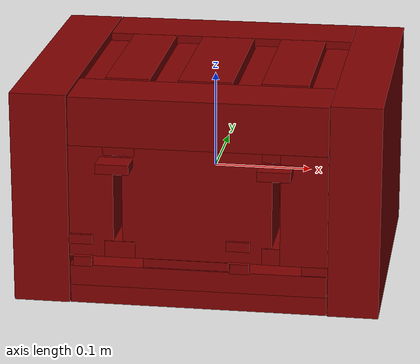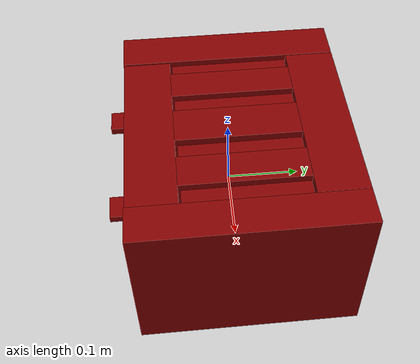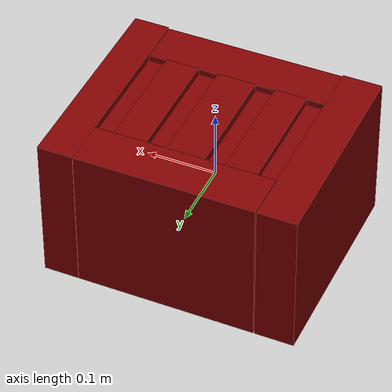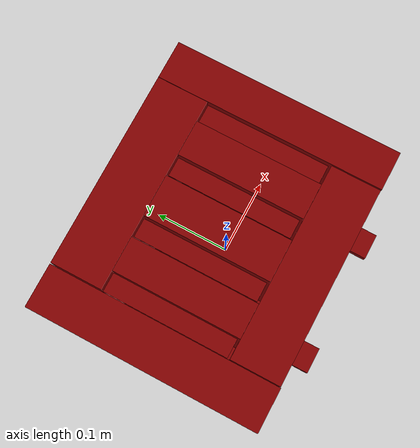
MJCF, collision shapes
<?xml version='1.0' encoding='UTF-8'?>
<mujoco model="model">
  <compiler angle="radian"/>
  <asset>
    <mesh file="visuals/Body001.obj" name="Body001_vis"/>
    <mesh file="visuals/Button001.obj" name="Button001_vis"/>
    <mesh file="visuals/Button002.obj" name="Button002_vis"/>
    <mesh file="visuals/Button003.obj" name="Button003_vis"/>
    <mesh file="visuals/Button004.obj" name="Button004_vis"/>
    <mesh file="visuals/Lever001.obj" name="Lever001_vis"/>
    <mesh file="visuals/Lever002.obj" name="Lever002_vis"/>
    <texture file="visuals/T_BC001.png" name="Body001_material" type="2d"/>
    <material name="Body001_material" rgba="1 1 1 1.0" texture="Body001_material" shininess="1" specular="1"/>
    <texture file="visuals/T_BC001.png" name="Button001_material" type="2d"/>
    <material name="Button001_material" rgba="1 1 1 1.0" texture="Button001_material" shininess="1" specular="1"/>
    <texture file="visuals/T_BC001.png" name="Button002_material" type="2d"/>
    <material name="Button002_material" rgba="1 1 1 1.0" texture="Button002_material" shininess="1" specular="1"/>
    <texture file="visuals/T_BC001.png" name="Button003_material" type="2d"/>
    <material name="Button003_material" rgba="1 1 1 1.0" texture="Button003_material" shininess="1" specular="1"/>
    <texture file="visuals/T_BC001.png" name="Button004_material" type="2d"/>
    <material name="Button004_material" rgba="1 1 1 1.0" texture="Button004_material" shininess="1" specular="1"/>
    <texture file="visuals/T_BC001.png" name="Lever001_material" type="2d"/>
    <material name="Lever001_material" rgba="1 1 1 1.0" texture="Lever001_material" shininess="1" specular="1"/>
    <texture file="visuals/T_BC001.png" name="Lever002_material" type="2d"/>
    <material name="Lever002_material" rgba="1 1 1 1.0" texture="Lever002_material" shininess="1" specular="1"/>
  </asset>
  <default>
    <default class="visual">
      <geom conaffinity="0" contype="0" group="1" type="mesh"/>
    </default>
    <default class="collision">
      <geom group="0" rgba="0.5 0 0 0.5"/>
    </default>
    <default class="spawn">
      <geom group="0" rgba="1 1 1 0.5" contype="0" conaffinity="0"/>
      <site group="0" rgba="1 1 1 0.5"/>
    </default>
    <default class="region">
      <geom group="1" conaffinity="0" contype="0" rgba="0 1 0 0"/>
    </default>
  </default>
  <worldbody>
    <body>
      <body name="object">
        <geom mesh="Body001_vis" type="mesh" solimp="0.998 0.998 0.001" solref="0.001 1" density="100" friction="0.95 0.3 0.1" class="visual" material="Body001_material"/>
        <geom class="collision" type="box" pos="-0.15742726624011993 0.012915825471282005 0.002451108768582344" size="0.028422826901078224 0.15073636174201965 0.10915911197662354" quat="1.0 0.0 0.0 0.0"/>
        <geom class="collision" type="box" pos="0.15744970738887787 0.012915825471282005 0.002451108768582344" size="0.025575680658221245 0.15073636174201965 0.10915911197662354" quat="1.0 0.0 0.0 0.0"/>
        <geom class="collision" type="box" pos="0.0019800602458417416 0.12985439598560333 0.002451108768582344" size="0.12950655817985535 0.03379778936505318 0.10915911197662354" quat="1.0 0.0 0.0 0.0"/>
        <geom class="collision" type="box" pos="-0.0792175829410553 0.011945940554141998 0.011153440922498703" size="0.022919220849871635 0.0839310958981514 0.10045678168535233" quat="1.0 0.0 0.0 0.0"/>
        <geom class="collision" type="box" pos="2.308376133441925e-05 0.011945940554141998 0.011153440922498703" size="0.02770495042204857 0.0839310958981514 0.10045678168535233" quat="1.0 0.0 0.0 0.0"/>
        <geom class="collision" type="box" pos="0.08044862747192383 0.011945940554141998 0.011153440922498703" size="0.02377796173095703 0.0839310958981514 0.10045678168535233" quat="1.0 0.0 0.0 0.0"/>
        <geom class="collision" type="box" pos="0.0014029631856828928 -0.02025175467133522 -0.09706620126962662" size="0.12940776348114014 0.11612878739833832 0.009750613942742348" quat="1.0 0.0 0.0 0.0"/>
        <geom class="collision" type="box" pos="0.0014029631856828928 -0.10463718324899673 -0.07667811959981918" size="0.12940776348114014 0.03244194760918617 0.010927493683993816" quat="1.0 0.0 0.0 0.0"/>
        <geom class="collision" type="box" pos="0.0015447498299181461 -0.10459443926811218 0.08488725125789642" size="0.1295495480298996 0.03248468041419983 0.025019899010658264" quat="1.0 0.0 0.0 0.0"/>
        <geom class="collision" type="box" pos="0.000752061780076474 -0.10406503081321716 0.0019107051193714142" size="0.07500772178173065 0.03195526450872421 0.05791382119059563" quat="1.0 0.0 0.0 0.0"/>
        <geom class="collision" type="box" pos="0.107742078602314 -0.10459443926811218 0.0019107051193714142" size="0.023630762472748756 0.03248468041419983 0.05791382119059563" quat="1.0 0.0 0.0 0.0"/>
        <geom class="collision" type="box" pos="-0.10584954917430878 -0.10382004082202911 0.0019107051193714142" size="0.022509802132844925 0.03216703236103058 0.05791382119059563" quat="1.0 0.0 0.0 0.0"/>
        <geom class="collision" type="box" pos="-0.010623300448060036 -0.10435780137777328 -0.06052663177251816" size="0.04294619336724281 0.03224804624915123 0.004553386475890875" quat="1.0 0.0 0.0 0.0"/>
        <geom class="collision" type="box" pos="0.11870092898607254 -0.10459443926811218 -0.06052663177251816" size="0.013107260689139366 0.03248468041419983 0.004553386475890875" quat="1.0 0.0 0.0 0.0"/>
        <geom class="collision" type="box" pos="-0.07698499411344528 -0.10413768887519836 -0.04741930216550827" size="0.015368800610303879 0.03248468041419983 0.008583811111748219" quat="1.0 0.0 0.0 0.0"/>
        <geom class="collision" type="box" pos="0.08126544207334518 -0.10413768887519836 -0.04741930216550827" size="0.015312239527702332 0.03248468041419983 0.008583811111748219" quat="1.0 0.0 0.0 0.0"/>
        <geom class="collision" type="box" pos="0.08111836761236191 -0.10413768887519836 0.05556058883666992" size="0.015459313988685608 0.03248468041419983 0.004495400004088879" quat="1.0 0.0 0.0 0.0"/>
        <geom class="collision" type="box" pos="-0.07711538672447205 -0.10413768887519836 0.05556058883666992" size="0.015897255390882492 0.03248468041419983 0.004495400004088879" quat="1.0 0.0 0.0 0.0"/>
        <geom class="collision" type="cylinder" pos="-0.16226035356521606 -0.09640666097402573 -0.10892433673143387" size="0.004896887578070164 0.002551341662183404" quat="1.0 0.0 0.0 0.0"/>
        <geom class="collision" type="cylinder" pos="0.16216564178466797 -0.09640666097402573 -0.10892433673143387" size="0.004896887578070164 0.002551341662183404" quat="1.0 0.0 0.0 0.0"/>
        <geom class="collision" type="cylinder" pos="0.16216564178466797 0.1349889636039734 -0.10892433673143387" size="0.004896887578070164 0.002551341662183404" quat="1.0 0.0 0.0 0.0"/>
        <geom class="collision" type="cylinder" pos="-0.16226035356521606 0.1349889636039734 -0.10892433673143387" size="0.004896887578070164 0.002551341662183404" quat="1.0 0.0 0.0 0.0"/>
        <body name="Button001">
          <joint axis="0.0 1.0 0.0" pos="-0.11641499400138855 -0.13784638047218323 -0.03743427246809006" limited="true" name="Button001_joint" range="0.0 0.001" type="slide" damping="1" frictionloss="1" armature=".01" stiffness="0.05"/>
          <geom mesh="Button001_vis" type="mesh" solimp="0.998 0.998 0.001" solref="0.001 1" density="100" friction="0.95 0.3 0.1" class="visual" material="Button001_material"/>
          <geom class="collision" type="box" pos="-0.11637920141220093 -0.13805429637432098 -0.03751402348279953" size="0.012049396522343159 0.0014285552315413952 0.004999059252440929" quat="1.0 0.0 0.0 0.0"/>
        </body>
        <body name="Button002">
          <joint axis="0.0 1.0 0.0" pos="0.04230264574289322 -0.13784638047218323 -0.03743429481983185" limited="true" name="Button002_joint" range="0.0 0.001" type="slide" damping="1" frictionloss="1" armature=".01" stiffness="0.05"/>
          <geom mesh="Button002_vis" type="mesh" solimp="0.998 0.998 0.001" solref="0.001 1" density="100" friction="0.95 0.3 0.1" class="visual" material="Button002_material"/>
          <geom class="collision" type="box" pos="0.04235977679491043 -0.13805429637432098 -0.03751402348279953" size="0.012049396522343159 0.0014285552315413952 0.004999059252440929" quat="1.0 0.0 0.0 0.0"/>
        </body>
        <body name="Button003">
          <joint axis="1.0 0.0 0.0" pos="-0.11414897441864014 -0.12978218495845795 -0.05992436408996582" limited="true" name="Button003_joint" range="0.0 0.052000000000000005" type="slide" damping="1" frictionloss="1" armature=".01" stiffness="0.05"/>
          <geom mesh="Button003_vis" type="mesh" solimp="0.998 0.998 0.001" solref="0.001 1" density="100" friction="0.95 0.3 0.1" class="visual" material="Button003_material"/>
          <geom class="collision" type="box" pos="-0.11415667831897736 -0.13981583714485168 -0.05994628369808197" size="0.009560592472553253 0.002833350794389844 0.005086520686745644" quat="1.0 0.0 0.0 0.0"/>
          <geom class="collision" type="cylinder" pos="-0.11352100968360901 -0.12739166617393494 -0.0600186251103878" size="0.0018894533859565854 0.009607632644474506" quat="0.7071067094802856 0.7071068286895752 0.0 0.0"/>
        </body>
        <body name="Button004">
          <joint axis="1.0 0.0 0.0" pos="0.044298525899648666 -0.12978234887123108 -0.05992436408996582" limited="true" name="Button004_joint" range="0.0 0.053" type="slide" damping="1" frictionloss="1" armature=".01" stiffness="0.05"/>
          <geom mesh="Button004_vis" type="mesh" solimp="0.998 0.998 0.001" solref="0.001 1" density="100" friction="0.95 0.3 0.1" class="visual" material="Button004_material"/>
          <geom class="collision" type="box" pos="0.044316455721855164 -0.13981583714485168 -0.05994628369808197" size="0.009560592472553253 0.002833350794389844 0.005086520686745644" quat="1.0 0.0 0.0 0.0"/>
          <geom class="collision" type="cylinder" pos="0.044370438903570175 -0.12739166617393494 -0.0600186251103878" size="0.0018894533859565854 0.009607632644474506" quat="0.7071067094802856 0.7071068286895752 0.0 0.0"/>
        </body>
        <body name="Lever001">
          <joint axis="0.0 0.0 -1.0" pos="-0.07934772968292236 -0.13922840356826782 0.04506422579288483" limited="true" name="Lever001_joint" range="0.0 0.075" type="slide" damping="1" frictionloss="1" armature=".01" stiffness="1" springref="-1"/>
          <geom mesh="Lever001_vis" type="mesh" solimp="0.998 0.998 0.001" solref="0.001 1" density="100" friction="0.95 0.3 0.1" class="visual" material="Lever001_material"/>
          <geom class="collision" type="box" pos="-0.07930850237607956 -0.15010011196136475 0.04507774859666824" size="0.016504444181919098 0.012149329297244549 0.004880914930254221" quat="1.0 0.0 0.0 0.0" name="sideL_lever_knob"/>
          <geom class="collision" type="cylinder" pos="-0.07924050837755203 -0.12753355503082275 0.045028846710920334" size="0.002466813661158085 0.01055104285478592" quat="0.7071067094802856 0.7071068286895752 0.0 0.0"/>
          <geom class="collision" type="box" pos="-0.11549612134695053 0.012951436452567577 0.1021818295121193" size="0.01249999925494194 0.08173847943544388 0.001539887161925435" quat="1.0 0.0 0.0 0.0" name="sideL_slotL_floor"/>
          <geom class="collision" type="box" pos="-0.041988011449575424 0.012951436452567577 0.1021818295121193" size="0.01249999925494194 0.08173847943544388 0.001539887161925435" quat="1.0 0.0 0.0 0.0" name="sideL_slotR_floor"/>
        </body>
        <body name="Lever002">
          <joint axis="0.0 0.0 -1.0" pos="0.0801430493593216 -0.13923010230064392 0.045061495155096054" limited="true" name="Lever002_joint" range="0.0 0.075" type="slide" damping="1" frictionloss="1" armature=".01" stiffness="1" springref="-1"/>
          <geom mesh="Lever002_vis" type="mesh" solimp="0.998 0.998 0.001" solref="0.001 1" density="100" friction="0.95 0.3 0.1" class="visual" material="Lever002_material"/>
          <geom class="collision" type="box" pos="0.08009845018386841 -0.15010011196136475 0.04507774859666824" size="0.016504444181919098 0.012149329297244549 0.004880914930254221" quat="1.0 0.0 0.0 0.0" name="sideR_lever_knob"/>
          <geom class="collision" type="cylinder" pos="0.08016644418239594 -0.12753355503082275 0.045028846710920334" size="0.002466813661158085 0.01055104285478592" quat="0.7071067094802856 0.7071068286895752 0.0 0.0"/>
          <geom class="collision" type="box" pos="0.0427587665617466 0.012951436452567577 0.1021818295121193" size="0.01249999925494194 0.08173847943544388 0.001539887161925435" quat="1.0 0.0 0.0 0.0" name="sideR_slotL_floor"/>
          <geom class="collision" type="box" pos="0.11821363121271133 0.012951436452567577 0.1021818295121193" size="0.01249999925494194 0.08173847943544388 0.001539887161925435" quat="1.0 0.0 0.0 0.0" name="sideR_slotR_floor"/>
        </body>
        <geom class="region" name="reg_main" type="box" pos="3.725290298461914e-09 0.012827321887016296 0.0" size="0.1829766482114792 0.14934466779232025 0.11141440272331238"/>
      </body>
    </body>
  </worldbody>
  <actuator>
    <motor name="Button001_joint_actuator" joint="Button001_joint" gear="0.5"/>
    <motor name="Button002_joint_actuator" joint="Button002_joint" gear="0.5"/>
    <motor name="Button003_joint_actuator" joint="Button003_joint" gear="0.5"/>
    <motor name="Button004_joint_actuator" joint="Button004_joint" gear="0.5"/>
    <motor name="Lever001_joint_actuator" joint="Lever001_joint" gear="0.5"/>
    <motor name="Lever002_joint_actuator" joint="Lever002_joint" gear="0.5"/>
  </actuator>
</mujoco>
